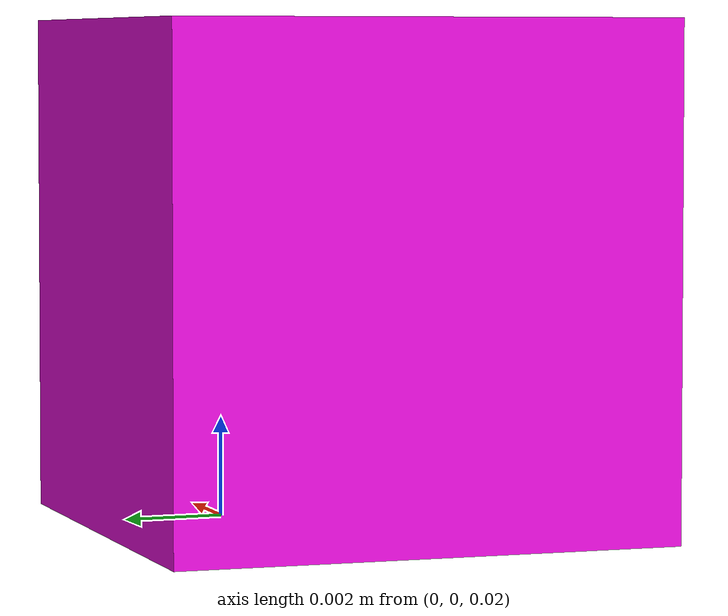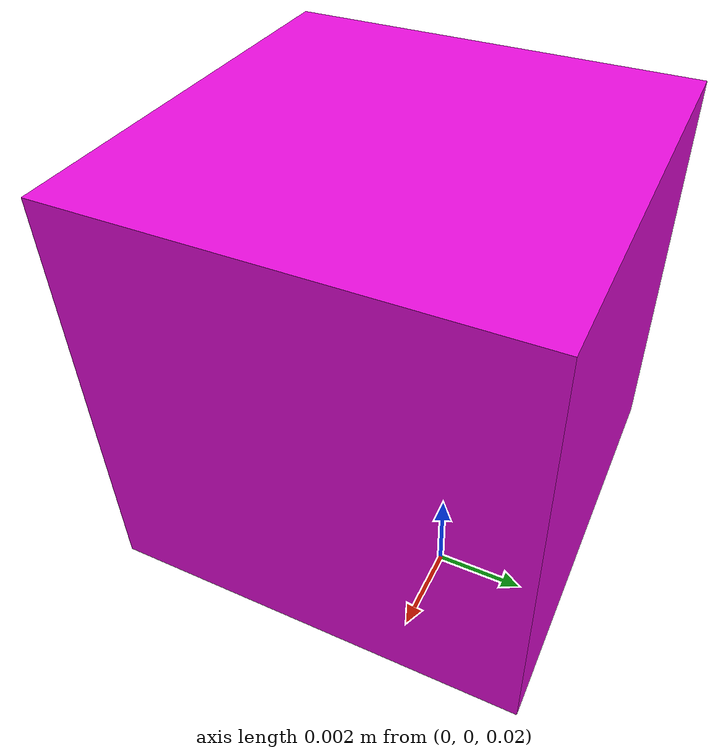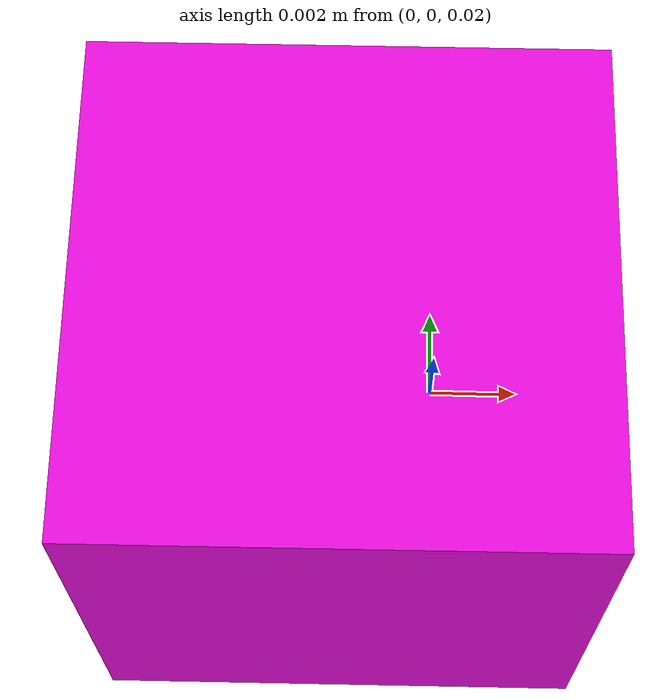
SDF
<?xml version='1.0'?>
<sdf version="1.4">
  <model name="Cube006">
    <link name="Cube006">
    <gravity>0</gravity>
      <collision name="collision">
        <mesh>
          <uri>model://meshes/Cube006.dae</uri>
        </mesh>
      </collision>
      <visual name="visual">
        <geometry>
          <mesh>
            <uri>model://meshes/Cube006.dae</uri>
          </mesh>
        </geometry>
        <surface>
          <friction>
            <ode>
              <mu>0.0</mu>
            </ode>
          </friction>
        </surface>
      </visual>
  </link>
  </model>
</sdf>
